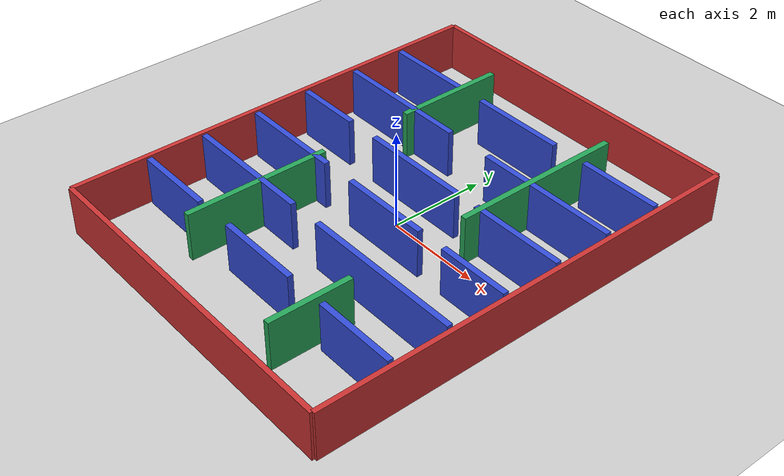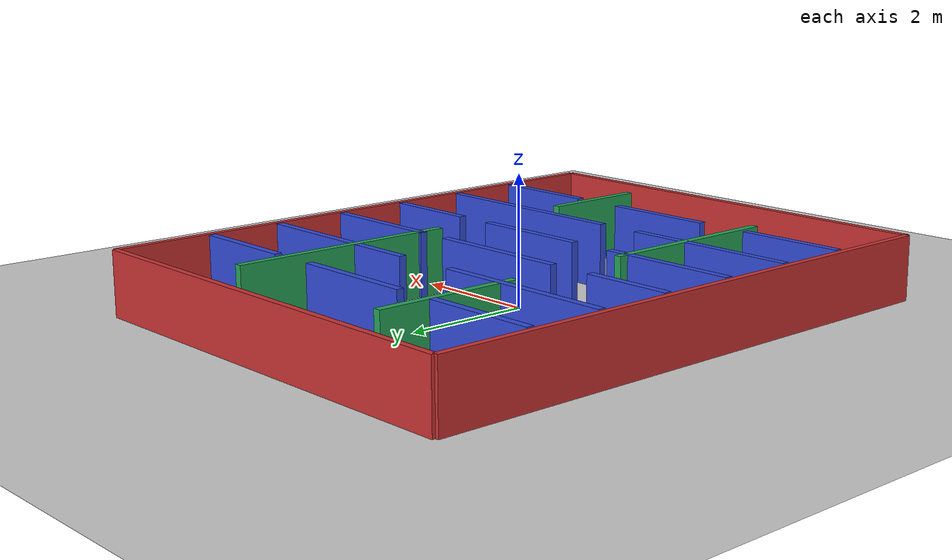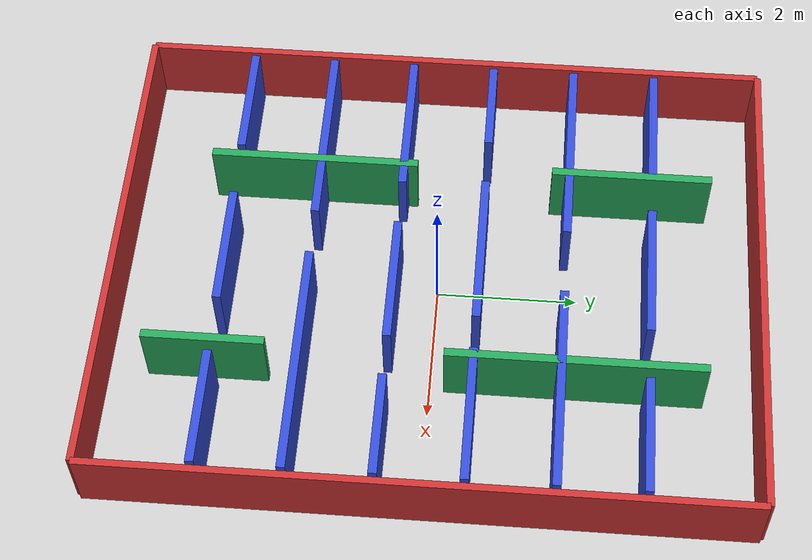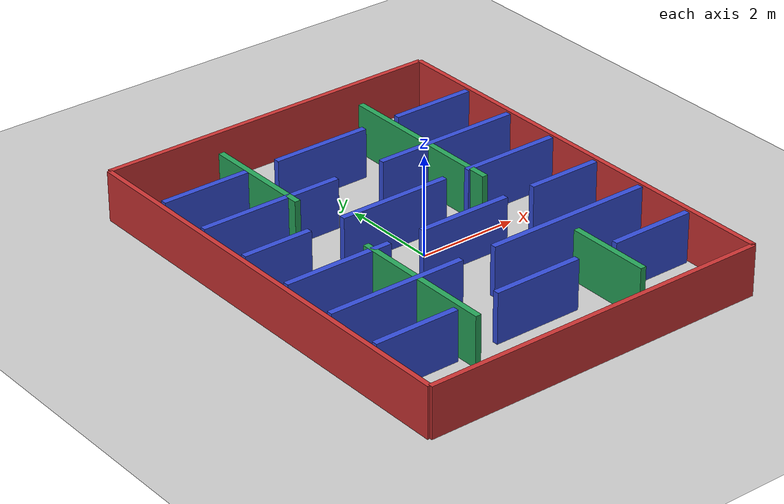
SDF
<?xml version="1.0" ?>
<sdf version="1.5">
  <world name="circuit_world">
    <gui fullscreen='0'>
      <camera name='user_camera'>
        <pose>0 0 12 0 1.5708 0</pose>
      </camera>
    </gui>

    <include>
      <uri>model://sun</uri>
    </include>
    <include>
      <uri>model://ground_plane</uri>
    </include>

    <!-- Outer frame: 7m x 9m, good scale for TurtleBot3 -->
    <model name="frame_left">
      <static>true</static>
      <pose>-3.55 0 0.5 0 0 0</pose>
      <link name="link">
        <collision name="col"><geometry><box><size>0.1 9.1 1.0</size></box></geometry></collision>
        <visual name="vis"><geometry><box><size>0.1 9.1 1.0</size></box></geometry><material><ambient>0.80 0.20 0.20 1</ambient></material></visual>
      </link>
    </model>
    <model name="frame_right">
      <static>true</static>
      <pose>3.55 0 0.5 0 0 0</pose>
      <link name="link">
        <collision name="col"><geometry><box><size>0.1 9.1 1.0</size></box></geometry></collision>
        <visual name="vis"><geometry><box><size>0.1 9.1 1.0</size></box></geometry><material><ambient>0.80 0.20 0.20 1</ambient></material></visual>
      </link>
    </model>
    <model name="frame_top">
      <static>true</static>
      <pose>0 4.55 0.5 0 0 0</pose>
      <link name="link">
        <collision name="col"><geometry><box><size>7.1 0.1 1.0</size></box></geometry></collision>
        <visual name="vis"><geometry><box><size>7.1 0.1 1.0</size></box></geometry><material><ambient>0.80 0.20 0.20 1</ambient></material></visual>
      </link>
    </model>
    <model name="frame_bottom">
      <static>true</static>
      <pose>0 -4.55 0.5 0 0 0</pose>
      <link name="link">
        <collision name="col"><geometry><box><size>7.1 0.1 1.0</size></box></geometry></collision>
        <visual name="vis"><geometry><box><size>7.1 0.1 1.0</size></box></geometry><material><ambient>0.80 0.20 0.20 1</ambient></material></visual>
      </link>
    </model>

    <!-- Multi-route maze: straight walls with multiple holes -->
    <!-- Row y = -3.0 (two wide openings) -->
    <model name="r1_seg_left"><static>true</static><pose>-2.60 -3.00 0.5 0 0 0</pose><link name="link"><collision name="col"><geometry><box><size>1.7 0.12 1.0</size></box></geometry></collision><visual name="vis"><geometry><box><size>1.7 0.12 1.0</size></box></geometry><material><ambient>0.20 0.30 0.85 1</ambient></material></visual></link></model>
    <model name="r1_seg_mid"><static>true</static><pose>0.00 -3.00 0.5 0 0 0</pose><link name="link"><collision name="col"><geometry><box><size>1.8 0.12 1.0</size></box></geometry></collision><visual name="vis"><geometry><box><size>1.8 0.12 1.0</size></box></geometry><material><ambient>0.20 0.30 0.85 1</ambient></material></visual></link></model>
    <model name="r1_seg_right"><static>true</static><pose>2.60 -3.00 0.5 0 0 0</pose><link name="link"><collision name="col"><geometry><box><size>1.7 0.12 1.0</size></box></geometry></collision><visual name="vis"><geometry><box><size>1.7 0.12 1.0</size></box></geometry><material><ambient>0.20 0.30 0.85 1</ambient></material></visual></link></model>

    <!-- Row y = -1.8 (offset openings for alternate routes) -->
    <model name="r2_seg_left"><static>true</static><pose>-2.05 -1.80 0.5 0 0 0</pose><link name="link"><collision name="col"><geometry><box><size>2.8 0.12 1.0</size></box></geometry></collision><visual name="vis"><geometry><box><size>2.8 0.12 1.0</size></box></geometry><material><ambient>0.20 0.30 0.85 1</ambient></material></visual></link></model>
    <model name="r2_seg_right"><static>true</static><pose>1.75 -1.80 0.5 0 0 0</pose><link name="link"><collision name="col"><geometry><box><size>3.4 0.12 1.0</size></box></geometry></collision><visual name="vis"><geometry><box><size>3.4 0.12 1.0</size></box></geometry><material><ambient>0.20 0.30 0.85 1</ambient></material></visual></link></model>

    <!-- Row y = -0.6 -->
    <model name="r3_seg_left"><static>true</static><pose>-2.35 -0.60 0.5 0 0 0</pose><link name="link"><collision name="col"><geometry><box><size>2.2 0.12 1.0</size></box></geometry></collision><visual name="vis"><geometry><box><size>2.2 0.12 1.0</size></box></geometry><material><ambient>0.20 0.30 0.85 1</ambient></material></visual></link></model>
    <model name="r3_seg_mid"><static>true</static><pose>0.40 -0.60 0.5 0 0 0</pose><link name="link"><collision name="col"><geometry><box><size>1.9 0.12 1.0</size></box></geometry></collision><visual name="vis"><geometry><box><size>1.9 0.12 1.0</size></box></geometry><material><ambient>0.20 0.30 0.85 1</ambient></material></visual></link></model>
    <model name="r3_seg_right"><static>true</static><pose>2.70 -0.60 0.5 0 0 0</pose><link name="link"><collision name="col"><geometry><box><size>1.5 0.12 1.0</size></box></geometry></collision><visual name="vis"><geometry><box><size>1.5 0.12 1.0</size></box></geometry><material><ambient>0.20 0.30 0.85 1</ambient></material></visual></link></model>

    <!-- Row y = 0.6 -->
    <model name="r4_seg_left"><static>true</static><pose>-2.75 0.60 0.5 0 0 0</pose><link name="link"><collision name="col"><geometry><box><size>1.4 0.12 1.0</size></box></geometry></collision><visual name="vis"><geometry><box><size>1.4 0.12 1.0</size></box></geometry><material><ambient>0.20 0.30 0.85 1</ambient></material></visual></link></model>
    <model name="r4_seg_mid"><static>true</static><pose>-0.20 0.60 0.5 0 0 0</pose><link name="link"><collision name="col"><geometry><box><size>2.3 0.12 1.0</size></box></geometry></collision><visual name="vis"><geometry><box><size>2.3 0.12 1.0</size></box></geometry><material><ambient>0.20 0.30 0.85 1</ambient></material></visual></link></model>
    <model name="r4_seg_right"><static>true</static><pose>2.45 0.60 0.5 0 0 0</pose><link name="link"><collision name="col"><geometry><box><size>2.0 0.12 1.0</size></box></geometry></collision><visual name="vis"><geometry><box><size>2.0 0.12 1.0</size></box></geometry><material><ambient>0.20 0.30 0.85 1</ambient></material></visual></link></model>

    <!-- Row y = 1.8 -->
    <model name="r5_seg_left"><static>true</static><pose>-2.00 1.80 0.5 0 0 0</pose><link name="link"><collision name="col"><geometry><box><size>2.9 0.12 1.0</size></box></geometry></collision><visual name="vis"><geometry><box><size>2.9 0.12 1.0</size></box></geometry><material><ambient>0.20 0.30 0.85 1</ambient></material></visual></link></model>
    <model name="r5_seg_right"><static>true</static><pose>1.95 1.80 0.5 0 0 0</pose><link name="link"><collision name="col"><geometry><box><size>3.0 0.12 1.0</size></box></geometry></collision><visual name="vis"><geometry><box><size>3.0 0.12 1.0</size></box></geometry><material><ambient>0.20 0.30 0.85 1</ambient></material></visual></link></model>

    <!-- Row y = 3.0 -->
    <model name="r6_seg_left"><static>true</static><pose>-2.55 3.00 0.5 0 0 0</pose><link name="link"><collision name="col"><geometry><box><size>1.8 0.12 1.0</size></box></geometry></collision><visual name="vis"><geometry><box><size>1.8 0.12 1.0</size></box></geometry><material><ambient>0.20 0.30 0.85 1</ambient></material></visual></link></model>
    <model name="r6_seg_mid"><static>true</static><pose>0.00 3.00 0.5 0 0 0</pose><link name="link"><collision name="col"><geometry><box><size>2.0 0.12 1.0</size></box></geometry></collision><visual name="vis"><geometry><box><size>2.0 0.12 1.0</size></box></geometry><material><ambient>0.20 0.30 0.85 1</ambient></material></visual></link></model>
    <model name="r6_seg_right"><static>true</static><pose>2.60 3.00 0.5 0 0 0</pose><link name="link"><collision name="col"><geometry><box><size>1.7 0.12 1.0</size></box></geometry></collision><visual name="vis"><geometry><box><size>1.7 0.12 1.0</size></box></geometry><material><ambient>0.20 0.30 0.85 1</ambient></material></visual></link></model>

    <!-- Vertical dividers with breaks to create loops / alternate shortcuts -->
    <model name="v1_top"><static>true</static><pose>-1.60 2.70 0.5 0 0 0</pose><link name="link"><collision name="col"><geometry><box><size>0.12 2.3 1.0</size></box></geometry></collision><visual name="vis"><geometry><box><size>0.12 2.3 1.0</size></box></geometry><material><ambient>0.15 0.65 0.35 1</ambient></material></visual></link></model>
    <model name="v1_bottom"><static>true</static><pose>-1.60 -1.90 0.5 0 0 0</pose><link name="link"><collision name="col"><geometry><box><size>0.12 3.0 1.0</size></box></geometry></collision><visual name="vis"><geometry><box><size>0.12 3.0 1.0</size></box></geometry><material><ambient>0.15 0.65 0.35 1</ambient></material></visual></link></model>

    <model name="v2_top"><static>true</static><pose>1.55 2.00 0.5 0 0 0</pose><link name="link"><collision name="col"><geometry><box><size>0.12 3.6 1.0</size></box></geometry></collision><visual name="vis"><geometry><box><size>0.12 3.6 1.0</size></box></geometry><material><ambient>0.15 0.65 0.35 1</ambient></material></visual></link></model>
    <model name="v2_bottom"><static>true</static><pose>1.55 -3.10 0.5 0 0 0</pose><link name="link"><collision name="col"><geometry><box><size>0.12 1.7 1.0</size></box></geometry></collision><visual name="vis"><geometry><box><size>0.12 1.7 1.0</size></box></geometry><material><ambient>0.15 0.65 0.35 1</ambient></material></visual></link></model>

  </world>
</sdf>
